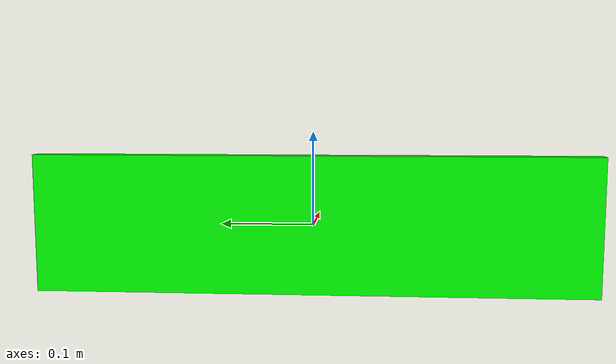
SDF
<?xml version='1.0'?>
<sdf version='1.6'>
  <model name='extra_heavy_duty_table_surface_only_collision'>
    <link name='front'>
      <pose frame=''>0 0 0 0 -0 0</pose>
      <inertial>
        <mass>53.5</mass>
        <pose frame=''>0 0 0 0 -0 0</pose>
        <inertia>
          <ixx>5.177409</ixx>
          <ixy>0</ixy>
          <ixz>0</ixz>
          <iyy>4.843753753</iyy>
          <iyz>0</iyz>
          <izz>4.843753753</izz>
        </inertia>
      </inertial>
      <self_collide>0</self_collide>
      <kinematic>0</kinematic>

      <visual name='visual1'>
        <pose frame=''>0 0 0 0 -0 0</pose>
        <geometry>
          <box>
            <size>0.02 0.6096 0.15</size>
          </box>
        </geometry>
        <material>
          <diffuse>0 1 0 1.0</diffuse>
        </material>
      </visual>
      <collision name='surface'>
        <laser_retro>0</laser_retro>
        <max_contacts>10</max_contacts>
        <pose frame=''>0 0 0 0 -0 0</pose>
        <geometry>
          <box>
             <size>0.02 0.6096 0.15</size>
          </box>
        </geometry>
        <surface>
          <friction>
            <ode>
              <mu>0.6</mu>
              <mu2>0.6</mu2>
              <fdir1>0 0 0</fdir1>
              <slip1>0</slip1>
              <slip2>0</slip2>
            </ode>
            <torsional>
              <coefficient>1</coefficient>
              <patch_radius>0</patch_radius>
              <surface_radius>0</surface_radius>
              <use_patch_radius>1</use_patch_radius>
              <ode>
                <slip>0</slip>
              </ode>
            </torsional>
          </friction>
          <bounce>
            <restitution_coefficient>0</restitution_coefficient>
            <threshold>1e+06</threshold>
          </bounce>
          <contact>
            <collide_without_contact>0</collide_without_contact>
            <collide_without_contact_bitmask>1</collide_without_contact_bitmask>
            <collide_bitmask>1</collide_bitmask>
            <ode>
              <soft_cfm>0</soft_cfm>
              <soft_erp>0.2</soft_erp>
              <kp>1e+13</kp>
              <kd>1</kd>
              <max_vel>0.01</max_vel>
              <min_depth>0</min_depth>
            </ode>
            <bullet>
              <split_impulse>1</split_impulse>
              <split_impulse_penetration_threshold>-0.01</split_impulse_penetration_threshold>
              <soft_cfm>0</soft_cfm>
              <soft_erp>0.2</soft_erp>
              <kp>1e+13</kp>
              <kd>1</kd>
            </bullet>
          </contact>
        </surface>
      </collision>
    </link>

  </model>
</sdf>
